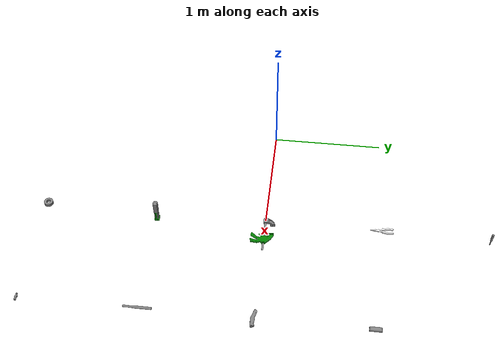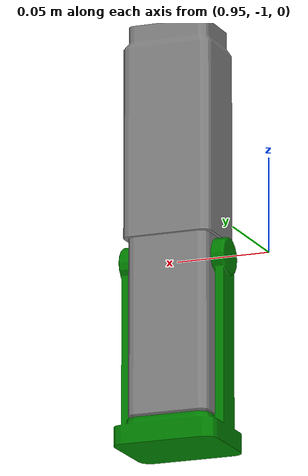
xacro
<?xml version="1.0"?>
<robot name="macroed" xmlns:xacro="http://ros.org/wiki/xacro">

  <material name="green">
    <color rgba="0 0.5 0 1"/>
  </material>

  <material name="white">
    <color rgba="1 1 1 1"/>
  </material>

  <material name="grey">
    <color rgba="0.5 0.5 0.5 1"/>
  </material>

  <xacro:arg name="with_pliers" default="true" />
  <xacro:arg name="with_clamp" default="true" />
  <xacro:arg name="with_tape" default="true" />
  <xacro:arg name="with_knife" default="true" />
  <xacro:arg name="with_hamer" default="true" />
  <xacro:arg name="with_haxegon_screwdriver" default="true" />
  <xacro:arg name="with_yellow_screwdriver" default="true" />
  <xacro:arg name="with_flashlight" default="true" />

  <xacro:macro name='tool_part_link' params="name obj_file color">
    <link name="${name}_link">
      <visual>
        <geometry>
          <mesh filename="${obj_file}"/>
        </geometry>
        <material name="${color}"/>
      </visual>
    </link>
  </xacro:macro>
  <xacro:macro name='pickup_joint' params="name parent_f *origin">
    <link name="${name}_pickup_link" />
    <joint name="${name}_pick_up_joint" type="fixed">
      <parent link="${parent_f}_link"/>
      <child link="${name}_pickup_link"/>
      <xacro:insert_block name="origin"/>
    </joint>
  </xacro:macro>
  <xacro:macro name='fixed_joint' params="name parent_f child_f *origin">
    <joint name="${name}_joint" type="fixed">
      <parent link="${parent_f}_link"/>
      <child link="${child_f}_link"/>
      <xacro:insert_block name="origin"/>
    </joint>
  </xacro:macro>
  <xacro:macro name='revolute_joint' params="name parent_f child_f *axis *limit">
    <joint name="${name}_joint" type="revolute">
      <parent link="${parent_f}_link"/>
      <child link="${child_f}_link"/>
      <xacro:insert_block name="axis"/>
      <xacro:insert_block name="limit"/>
    </joint>
  </xacro:macro>
  <xacro:macro name='prismatic_joint' params="name parent_f child_f *axis *limit">
    <joint name="${name}_joint" type="prismatic">
      <parent link="${parent_f}_link"/>
      <child link="${child_f}_link"/>
      <xacro:insert_block name="axis"/>
      <xacro:insert_block name="limit"/>
    </joint>
  </xacro:macro>
  <xacro:macro name='single_tool_link' params="name obj_file color *origin">
    <link name="${name}_link">
      <visual>
        <geometry>
          <mesh filename="${obj_file}"/>
        </geometry>
        <material name="${color}"/>
      </visual>
    </link>
    <joint name="${name}_joint" type="fixed">
      <parent link="base_link"/>
      <child link="${name}_link"/>
      <xacro:insert_block name="origin"/>
    </joint>
  </xacro:macro>

  <!--global frame-->
  <link name="base_link"/>

  <!--pliers description-->
  <xacro:if value="$(arg with_pliers)">
    <xacro:tool_part_link name="left_pliers" obj_file="file://$(find tool_meshes)/meshes/pliers_left.dae" color="white" />
    <xacro:tool_part_link name="right_pliers" obj_file="file://$(find tool_meshes)/meshes/pliers_right.dae" color="white" />
    <xacro:pickup_joint name="pliers" parent_f="left_pliers">
      <origin xyz="-0.025 0.10 0"/>
    </xacro:pickup_joint>
    <xacro:fixed_joint name="pliers" parent_f="base" child_f="left_pliers">
      <origin xyz="1 1 0"/>
    </xacro:fixed_joint>
    <xacro:revolute_joint name="right_pliers" parent_f="left_pliers" child_f="right_pliers">
      <axis xyz="0 0 -1" />
      <limit effort="1000.0" lower="0.0" upper="0.785" velocity="0.5"/>
    </xacro:revolute_joint>
  </xacro:if>

  <!--clamp description-->
  <xacro:if value="$(arg with_clamp)">
    <xacro:tool_part_link name="clamp" obj_file="file://$(find tool_meshes)/meshes/clamp_body.dae" color="grey" />
    <xacro:tool_part_link name="clamp_handle" obj_file="file://$(find tool_meshes)/meshes/clamp_handle.dae" color="green" />
    <xacro:pickup_joint name="clamp" parent_f="clamp">
      <origin xyz="0.1 0 0"/>
    </xacro:pickup_joint>
    <xacro:fixed_joint name="clamp" parent_f="base" child_f="clamp">
      <origin xyz="1 0 0"/>
    </xacro:fixed_joint>
    <xacro:prismatic_joint name="clamp_handle" parent_f="clamp" child_f="clamp_handle">
      <axis xyz="1 0 0" />
      <limit effort="1000.0" lower="0.1" upper="0.30" velocity="0.5"/>
    </xacro:prismatic_joint>
  </xacro:if>

  <!-- flashlight description-->
  <xacro:if value="$(arg with_flashlight)">
    <xacro:tool_part_link name="flashlight" obj_file="file://$(find tool_meshes)/meshes/flashlight_body.dae" color="grey" />
    <xacro:tool_part_link name="flashlight_stand" obj_file="file://$(find tool_meshes)/meshes/flashlight_stand.dae" color="green" />
    <xacro:pickup_joint name="flashlight" parent_f="flashlight">
      <origin xyz="0 0 0.03"/>
    </xacro:pickup_joint>
    <xacro:fixed_joint name="flashlight" parent_f="base" child_f="flashlight">
      <origin xyz="1 -1 0"/>
    </xacro:fixed_joint>
    <xacro:revolute_joint name="flashlight_stand" parent_f="flashlight" child_f="flashlight_stand">
      <axis xyz="1 0 0" />
      <limit effort="1000.0" lower="-2.7" upper="2.7" velocity="0.5"/>
    </xacro:revolute_joint>
  </xacro:if>

  <!-- tape description-->
  <xacro:if value="$(arg with_tape)">
    <xacro:single_tool_link name="tape" obj_file="file://$(find tool_meshes)/meshes/tape.dae" color="grey" >
      <origin xyz="1 -2 0"/>
    </xacro:single_tool_link>
    <xacro:pickup_joint name="tape" parent_f="tape">
      <origin xyz="0.03 0 0"/>
    </xacro:pickup_joint>
  </xacro:if>

  <!-- hamer description-->
  <xacro:if value="$(arg with_hamer)">
    <xacro:single_tool_link name="hamer_head" obj_file="file://$(find tool_meshes)/meshes/hamer_head.dae" color="grey" >
      <origin xyz="2 -2 0"/>
    </xacro:single_tool_link>
    <xacro:single_tool_link name="hamer_handle" obj_file="file://$(find tool_meshes)/meshes/hamer_handle.dae" color="grey" >
      <origin xyz="2 -1 0"/>
    </xacro:single_tool_link>
    <xacro:pickup_joint name="hamer" parent_f="hamer_handle">
      <origin xyz="0 -0.04 0"/>
    </xacro:pickup_joint>
  </xacro:if>

  <!-- knife description-->
  <xacro:if value="$(arg with_knife)">
    <xacro:single_tool_link name="knife" obj_file="file://$(find tool_meshes)/meshes/knife.dae" color="grey" >
      <origin xyz="2 0 0"/>
    </xacro:single_tool_link>
    <xacro:pickup_joint name="knife" parent_f="knife">
      <origin xyz="0.02 -0.01 0"/>
    </xacro:pickup_joint>
  </xacro:if>

  <!-- haxegon_screwdriver description-->
  <xacro:if value="$(arg with_haxegon_screwdriver)">
    <xacro:single_tool_link name="haxegon_screwdriver" obj_file="file://$(find tool_meshes)/meshes/haxegon_screwdriver.dae" color="grey" >
      <origin xyz="2 1 0"/>
    </xacro:single_tool_link>
    <xacro:pickup_joint name="haxegon_screwdriver" parent_f="haxegon_screwdriver">
      <origin xyz="0 0 0.005"/>
    </xacro:pickup_joint>
  </xacro:if>

  <!-- yellow_screwdriver description-->
  <xacro:if value="$(arg with_yellow_screwdriver)">
    <xacro:single_tool_link name="yellow_screwdriver" obj_file="file://$(find tool_meshes)/meshes/yellow_screwdriver.dae" color="grey" >
      <origin xyz="1 2 0"/>
    </xacro:single_tool_link>
    <xacro:pickup_joint name="yellow_screwdriver" parent_f="yellow_screwdriver">
      <origin xyz="0 0 0.035"/>
    </xacro:pickup_joint>
  </xacro:if>

</robot>
